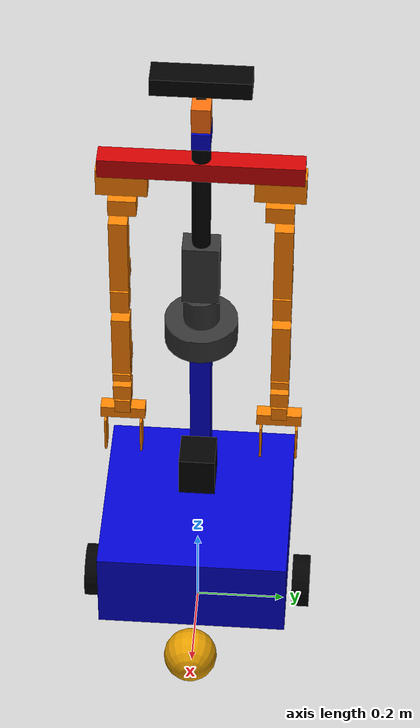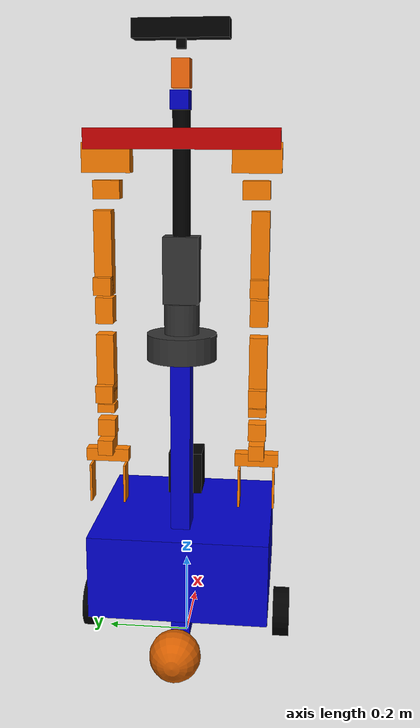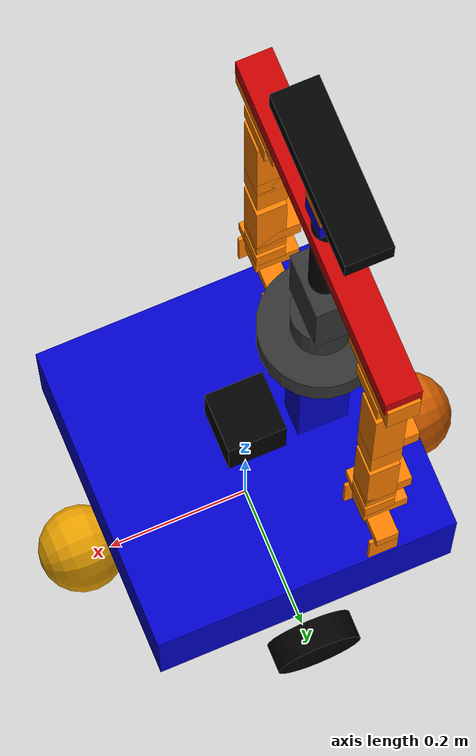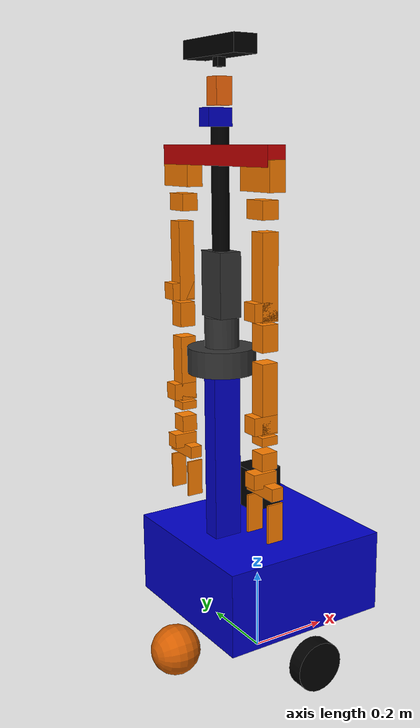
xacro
<?xml version="1.0"?>
<robot name="justina" xmlns:xacro="http://www.ros.org/wiki/xacro">
  <!-- INCLUDES -->
  <xacro:property name="base_width" value="0.42"/>
  <xacro:property name="base_depth" value="0.42"/>
  <xacro:property name="base_height" value="0.2"/>
  <xacro:property name="base_mass" value="30.0"/>
  <xacro:property name="wheel_radius" value="0.06"/>
  <xacro:property name="wheel_height" value="0.04"/>
  <xacro:property name="wheel_mass" value="30.0"/>
  <xacro:property name="torso_mass" value="0.6"/>
  <xacro:property name="spine_mass" value="0.001"/>
  <xacro:property name="neck_mass" value="0.001"/>
  <xacro:property name="MX_106_mass" value="0.05"/>
  <xacro:property name="MX_64_mass" value="0.05"/>
  <xacro:property name="kinect_mass" value="0.1"/>
  <xacro:property name="PI_2" value="1.570796327"/>
  <xacro:property name="PI" value="3.14159265359"/>

  <!-- BASE LINK -->
  <link name="base_link">
    <visual>
      <origin xyz="0 0 0.235" rpy="0 0 0"/>
      <geometry> <box size="0.42 0.42 0.2"/></geometry>
      <material name="blue"/>
    </visual>
    <collision>
      <origin xyz="0 0 0.235" rpy="0 0 0"/>
      <geometry> <box size="0.42 0.42 0.2"/></geometry>
    </collision>
    <inertial>
      <origin xyz="0 0 0.235" rpy="0 0 0"/>
      <mass value="50.00"/>
      <inertia ixx="0.3742" ixy="0.000434172172" ixz="0.03088" iyy="0.3436" iyz="0.01775" izz="0.1509"/>
    </inertial>
  </link>
  <joint name="wheel_left_connect" type="continuous">
    <origin xyz="0 0.24 0.065" rpy="-1.5708 0 0"/>
    <parent link="base_link"/>
    <child link="wheel_left"/>
    <axis xyz="0.0 0 1.0"/>
    <limit effort="11.067" velocity="20.8"/>
    <dynamics damping="1.0"/>
  </joint>

  <link name="wheel_left">
    <visual>
      <origin xyz="0 0 0" rpy="0 0 0"/>
      <geometry><cylinder length="${wheel_height}" radius="${wheel_radius}"/></geometry>
      <material name="gray"><color rgba="0 0 0 1" /></material>
    </visual>
    <collision>
      <origin xyz="0 0 0" rpy="0 0 0"/>
	<geometry><cylinder length="${wheel_height}" radius="${wheel_radius}"/></geometry>
    </collision>
    <inertial>
      <origin xyz="0 0 0"/>
      <mass value="0.2"/>
      <inertia ixx="0.015" ixy="0" ixz="0" iyy="0.015" iyz="0" izz="0.015"/>
    </inertial>
  </link>

  <joint name="wheel_right_connect" type="continuous">
    <origin xyz="0 -0.24 0.065" rpy="-1.5708 0 0"/>
    <parent link="base_link"/>
    <child link="wheel_right"/>
    <axis xyz="0.0 0 1.0"/>
    <limit effort="11.067" velocity="20.8"/>
    <dynamics damping="1.0"/>
  </joint>

  <link name="wheel_right">
    <visual>
      <origin xyz="0 0 0" rpy="0 0 0"/>
      <geometry><cylinder length="${wheel_height}" radius="${wheel_radius}"/></geometry>
      <material name="black"><color rgba="0 0 0 1" /></material>
    </visual>
    <collision>
      <origin xyz="0 0 0" rpy="0 0 0"/>
      <geometry><cylinder length="${wheel_height}" radius="${wheel_radius}"/></geometry>
    </collision>
    <inertial>
      <origin xyz="0 0 0" rpy="0 0 0"/>
      <mass value="0.2"/>
      <inertia ixx="0.015" ixy="0" ixz="0" iyy="0.015" iyz="0" izz="0.015"/>
    </inertial>
  </link>

  <joint name="wheel_back_connect_x" type="continuous">
    <origin xyz="-0.24 0 0.065" rpy="-1.5708 0 -1.5708"/>
    <parent link="base_link"/>
    <child link="wheel_back_x"/>
    <axis xyz="1 0 0"/>
    <limit effort="1.0" velocity="3.0"/>
    <dynamics damping="1.0"/>
  </joint>

  <link name="wheel_back_x">
    <inertial>
      <origin xyz="0 0 0" rpy="0 0 0"/>
      <mass value="0.2"/>
      <inertia ixx="0.015" ixy="0" ixz="0" iyy="0.015" iyz="0" izz="0.015"/>
    </inertial>
  </link>

  <joint name="wheel_back_connect_y" type="continuous">
    <axis xyz="0 1 0"/>
    <limit effort="8.85" velocity="10.0"/>
    <parent link="wheel_back_x"/>
    <child link="wheel_back_y"/>
  </joint>
  <link name="wheel_back_y">
    <inertial>
      <mass value="0.2"/>
      <origin xyz="0 0 0"/>
      <inertia ixx="0.015" ixy="0" ixz="0" iyy="0.015" iyz="0" izz="0.015"/>
    </inertial>
  </link>

  <joint name="wheel_back_connect_z" type="continuous">
      <axis xyz="0.0 0.0 1.0"/>
      <limit effort="8.85" velocity="10.0"/>
      <parent link="wheel_back_y"/>
      <child link="wheel_back_z"/>
  </joint>
  <link name="wheel_back_z">
    <visual>
      <geometry>
        <sphere radius="0.06"/>
      </geometry>
      <material name="wheel"/>
    </visual>
    <collision>
      <geometry>
        <sphere radius="0.06"/>
      </geometry>
    </collision>
    <inertial>
      <mass value="0.2"/>
      <origin xyz="0 0 0"/>
      <inertia ixx="0.015" ixy="0" ixz="0" iyy="0.015" iyz="0" izz="0.015"/>
    </inertial>
  </link>

	<joint name="wheel_front_connect_x" type="continuous">
		<origin xyz="0.24 0 0.065" rpy="-1.5708 0 -1.5708"/>
		<parent link="base_link"/>
		<child link="wheel_front_x"/>
		<axis xyz="1 0 0"/>
    		<limit effort="1.0" velocity="3.0"/>
    		<dynamics damping="1.0"/>
	</joint>

  <link name="wheel_front_x">
    <inertial>
      <mass value="0.2"/>
      <origin xyz="0 0 0"/>
      <inertia ixx="0.015" ixy="0" ixz="0" iyy="0.015" iyz="0" izz="0.015"/>
    </inertial>
  </link>
  <joint name="wheel_front_connect_y" type="continuous">
    <axis xyz="0.0 1.0 0.0"/>
    <limit effort="8.85" velocity="10.0"/>
    <parent link="wheel_front_x"/>
    <child link="wheel_front_y"/>
  </joint>
  <link name="wheel_front_y">
    <inertial>
      <mass value="0.2"/>
      <origin xyz="0 0 0"/>
      <inertia ixx="0.015" ixy="0" ixz="0" iyy="0.015" iyz="0" izz="0.015"/>
    </inertial>
  </link>
  <joint name="wheel_front_connect_z" type="continuous">
    <axis xyz="0.0 0.0 1.0"/>
    <limit effort="8.85" velocity="10.0"/>
    <parent link="wheel_front_y"/>
    <child link="wheel_front_z"/>
  </joint>
  <link name="wheel_front_z">
    <visual>
      <geometry>
        <sphere radius="0.06"/>
      </geometry>
      <material name="wheel"/>
    </visual>
    <collision>
      <geometry>
        <sphere radius="0.06"/>
      </geometry>
    </collision>
    <inertial>
      <mass value="0.2"/>
      <origin xyz="0 0 0"/>
      <inertia ixx="0.015" ixy="0" ixz="0" iyy="0.015" iyz="0" izz="0.015"/>
    </inertial>
  </link>

  	<gazebo reference="base_link">
		<material>Gazebo/blue</material>
    <selfCollide>false</selfCollide>
    <gravity>true</gravity>
    <mu1>0.9</mu1>
    <mu2>0.9</mu2>
	</gazebo>
	<gazebo reference="wheel_left">
		<material>Gazebo/Black</material>
		    <selfCollide>false</selfCollide>
		    <gravity>true</gravity>
		    <turnGravityOff>false</turnGravityOff>
		    <kp>1000000.0</kp>
		    <kd>10.0</kd>
		    <mu1>1.0</mu1>
		    <mu2>1.0</mu2>
		    <fdir1>1 0 0</fdir1>
		    <maxVel>1.0</maxVel>
		    <minDepth>0.00</minDepth>
	</gazebo>
	<gazebo reference="wheel_right">
		<material>Gazebo/Black</material>
    <selfCollide>false</selfCollide>
    <gravity>true</gravity>
    <turnGravityOff>false</turnGravityOff>
    <kp>1000000.0</kp>
    <kd>10.0</kd>
    <mu1>1.0</mu1>
    <mu2>1.0</mu2>
    <fdir1>1 0 0</fdir1>
    <maxVel>1.0</maxVel>
    <minDepth>0.00</minDepth>
	</gazebo>
  <gazebo reference="wheel_back_y">
    <selfCollide>false</selfCollide>
    <gravity>true</gravity>
    <mu1>0.1</mu1>
    <mu2>0.1</mu2>
    <maxVel>1.0</maxVel>
    <material value="Gazebo/FlatBlack"/>
  </gazebo>
  <gazebo reference="wheel_front_z">
    <selfCollide>false</selfCollide>
    <gravity>true</gravity>
    <mu1>0.1</mu1>
    <mu2>0.1</mu2>
    <maxVel>1.0</maxVel>
    <material value="Gazebo/FlatBlack"/>
  </gazebo>

  <transmission name="tran1">
	    <type>transmission_interface/SimpleTransmission</type>
	    <joint name="wheel_left_connect">
		    <hardwareInterface>hardware_interface/EffortJointInterface</hardwareInterface>
	    </joint>
	    <actuator name="motor1">
		    <mechanicalReduction>1</mechanicalReduction>
	    </actuator>
    </transmission>

    <transmission name="tran2">
	    <type>transmission_interface/SimpleTransmission</type>
	    <joint name="wheel_right_connect">
		    <hardwareInterface>hardware_interface/EffortJointInterface</hardwareInterface>
	    </joint>
	    <actuator name="motor2">
		    <mechanicalReduction>1</mechanicalReduction>
	    </actuator>
    </transmission>

    <!-- GAZEBO CONTROL -->
    <gazebo>
      <plugin name="differential_drive_controller" filename="libgazebo_ros_diff_drive.so">
	<leftJoint>wheel_left_connect</leftJoint>
	<rightJoint>wheel_right_connect</rightJoint>
	<wheelSeparation>0.42</wheelSeparation>
	<wheelDiameter>0.12</wheelDiameter>
	<torque>20</torque>
        <publishWheelTF>true</publishWheelTF>
        <robotNamespace>/</robotNamespace>
        <publishTf>1</publishTf>
        <publishWheelJointState>false</publishWheelJointState>
        <alwaysOn>true</alwaysOn>
        <updateRate>100.0</updateRate>
        <broadcastTF>1</broadcastTF>
        <wheelTorque>20.0</wheelTorque>
        <commandTopic>cmd_vel</commandTopic>
        <odometryFrame>odom</odometryFrame>
        <odometryTopic>odom</odometryTopic>
        <pose_covariance_diagonal>[1.0, 1.0, 0.0, 0.0, 0.0, 1.0]</pose_covariance_diagonal>
        <twist_covariance_diagonal>[0.01, 0.0, 0.0, 0.0, 0.0, 0.1]</twist_covariance_diagonal>
        <gaussianNoise>0.05</gaussianNoise>
        <robotBaseFrame>base_link</robotBaseFrame>
        <legacyMode>false</legacyMode>
        <publishOdomTF>true</publishOdomTF>
        <odometrySource>world</odometrySource>
      </plugin>
    </gazebo>

    <!-- LASER LINK AND PLUGINS -->
    <link name="laser_link">
      <visual>
        <origin xyz="0 0 0" rpy="0 0 0"/>
        <geometry> <box size="0.08 0.08 0.1"/></geometry>
        <material name="black"/>
      </visual>
      <collision>
        <origin xyz="0 0 0" rpy="0 0 0"/>
        <geometry> <box size="0.08 0.08 0.1"/></geometry>
      </collision>
      <inertial>
        <origin xyz="0 0 0" rpy="0 0 0"/>
        <mass value="0.1"/>
        <inertia
            ixx="0.000136667" ixy="0.0" ixz="0.0"
            iyy="0.000136667" iyz="0.0"
            izz="0.000106667"/>
      </inertial>
    </link>
    <joint name="laser_connect" type="fixed">
      <origin xyz="0 0 0.44" />
      <parent link="base_link"/>
      <child link="laser_link"/>
    </joint>
    <gazebo reference="laser_link">
    <sensor type="ray" name="hokuyo_sensor">
      <pose>0 0 0 0 0 0</pose>
      <visualize>true</visualize>
      <update_rate>10</update_rate>
      <ray>
        <scan>
          <horizontal>
            <samples>370</samples>
            <resolution>0.5</resolution>
            <min_angle>-1.570796</min_angle>
            <max_angle>1.570796</max_angle>
          </horizontal>
        </scan>
        <range>
          <min>0.10</min>
          <max>10.0</max>
          <resolution>0.01</resolution>
        </range>
        <noise>
          <type>gaussian</type>
          <mean>0.0</mean>
          <stddev>0.01</stddev>
        </noise>
      </ray>
      <plugin name="gazebo_ros_hokuyo_controller" filename="libgazebo_ros_laser.so">
        <topicName>/scan</topicName>
        <frameName>laser_link</frameName>
      </plugin>
    </sensor>
    </gazebo>

        <!--
      SPINE LINKS AND JOINTS
    -->
    <link name="spine_link">
      <visual>
        <origin xyz= "0 0 -0.3" rpy="0 0 0"/>
        <geometry><box size="0.07 0.045 0.7"/></geometry>
        <material name="blue"/>
      </visual>
      <collision>
        <origin xyz= "0 0 -0.3" rpy="0 0 0"/>
        <geometry><box size="0.07 0.045 0.7"/></geometry>
      </collision>
      <inertial>
        <origin xyz="0 0 0" rpy="0 0 0"/>
        <mass value="0.1"/>
        <inertia
            ixx="0.001031" ixy="0.0" ixz="0.0"
            iyy="0.001025" iyz="0.0"
            izz="0.00014"/>
      </inertial>
    </link>

    <joint name="spine_connect" type="fixed">
      <origin xyz= "-0.1 0 0.71" rpy="0 0 0"/>
      <parent link="base_link"/>
      <child link="spine_link"/>
    </joint>

    <!--
        WAIST LINKS AND JOINTS
    -->
    <link name="waist_link">
      <visual>
        <origin xyz= "0 0 -0.1" rpy="0 0 0"/>
        <geometry><cylinder length="0.06" radius="0.08"/></geometry>
        <material name="grey"/>
      </visual>
      <collision>
        <origin xyz= "0 0 -0.1" rpy="0 0 0"/>
        <geometry><cylinder length="0.06" radius="0.08"/></geometry>
      </collision>
      <visual>
        <origin xyz= "0 0 -0.04" rpy="0 0 0"/>
        <geometry><cylinder length="0.08" radius="0.04"/></geometry>
        <material name="grey"/>
      </visual>
      <collision>
        <origin xyz= "0 0 -0.04" rpy="0 0 0"/>
        <geometry><cylinder length="0.08" radius="0.04"/></geometry>
      </collision>
      <visual>
        <origin xyz= "0 0 0.075" rpy="0 0 0"/>
        <geometry><box size="0.055 0.08 0.15" /></geometry>
        <material name="grey"/>
      </visual>
      <collision>
        <origin xyz= "0 0 0.075" rpy="0 0 0"/>
        <geometry><box size="0.055 0.08 0.15" /></geometry>
      </collision>
      <visual>
        <origin xyz= "0 0 0.285" rpy="0 0 0"/>
        <geometry><cylinder length="0.27" radius="0.02"/></geometry>
        <material name="gray"/>
      </visual>
      <collision>
        <origin xyz= "0 0 0.285" rpy="0 0 0"/>
        <geometry><cylinder length="0.27" radius="0.02"/></geometry>
      </collision>
      <inertial>
        <origin xyz="0 0 0" rpy="0 0 0"/>
        <mass value="0.5"/>
        <inertia
            ixx="0.00258333" ixy="0.0" ixz="0.0"
            iyy="0.00258333" iyz="0.0"
            izz="0.0045"/>
      </inertial>
    </link>

    <joint name="waist_connect" type="fixed">
      <origin xyz= "0 0 0.16" rpy="0 0 0"/>
      <parent link="spine_link"/>
      <child link="waist_link"/>
    </joint>

    <link name="shoulders_link">
      <visual>
        <origin xyz= "0 0 0" rpy="0 0 0"/>
        <geometry><box size="0.045 0.43 0.045"/></geometry>
        <material name="red"/>
      </visual>
      <collision>
        <origin xyz= "0 0 0" rpy="0 0 0"/>
        <geometry><box size="0.045 0.43 0.045"/></geometry>
      </collision>
      <inertial>
        <origin xyz="0 0 0" rpy="0 0 0"/>
        <mass value="0.5"/>
        <inertia
            iyy="0.00075" ixy="0.0" ixz="0.0"
            ixx="0.003504" iyz="0.0"
            izz="0.003504"/>
      </inertial>
    </link>

    <joint name="shoulders_connect" type="fixed">
      <origin xyz="0 0 0.36" rpy="0 0 0"/>
      <parent link="waist_link"/>
      <child link="shoulders_link"/>
    </joint>

    <!--
      LEFT ARM LINKS AND JOINTS
  -->
  <link name="shoulders_left_link">
    <visual>
      <origin xyz="0 -0.01 0.02" rpy = "0 0 0"/>
      <geometry>
        <box size = "0.04025 0.108 0.065"/>
      </geometry>
      <material name = "la_material"><color rgba="1.0 0.5 0 1"/></material>
    </visual>
    <collision>
      <origin xyz="0 -0.01 0.02" rpy = "0 0 0"/>
      <geometry>
        <box size = "0.04025 0.108 0.065"/>
      </geometry>
    </collision>
    <inertial>
      <origin xyz="0 -0.01 0.02" rpy = "0 0 0"/>
      <mass value="0.125"/>
      <inertia
        ixx="0.0015" ixy="0.0" ixz="0.0"
        iyy="0.002175" iyz="0.0"
        izz="0.003075"/>
    </inertial>
  </link>
  <link name="left_arm_link1">
    <visual>
      <origin xyz="0 -0.01 -0.04881" rpy = "0 0 0"/>
      <geometry>
        <box size = "0.04025 0.06 0.04025"/>
      </geometry>
      <material name = "la_material"><color rgba="1.0 0.5 0 1"/></material>
    </visual>
    <collision>
      <origin xyz="0 -0.01 -0.04881" rpy = "0 0 0"/>
      <geometry>
        <box size = "0.04025 0.06 0.04025"/>
      </geometry>
    </collision>
    <inertial>
      <origin xyz="0 -0.01 -0.04881" rpy = "0 0 0"/>
      <mass value="0.125"/>
      <inertia
        ixx="0.0015" ixy="0.0" ixz="0.0"
        iyy="0.002175" iyz="0.0"
        izz="0.003075"/>
    </inertial>
  </link>
  <link name="left_arm_link2">
    <visual>
      <origin xyz="0 0 -0.125" rpy = "0 0 0"/>
      <geometry>
        <box size = "0.04025 0.04025 0.19"/>
      </geometry>
      <material name = "la_material"><color rgba="1.0 0.5 0 1"/></material>
    </visual>
    <visual>
      <origin xyz="-0.01 0 -0.197" rpy = "0 0 0"/>
      <geometry>
        <box size = "0.06 0.04025 0.04025"/>
      </geometry>
      <material name = "la_material"><color rgba="1.0 0.5 0 1"/></material>
    </visual>
    <collision>
      <origin xyz="0 0 -0.125" rpy = "0 0 0"/>
      <geometry>
        <box size = "0.04025 0.04025 0.19"/>
      </geometry>
    </collision>
    <collision>
      <origin xyz="-0.01 0 -0.197" rpy = "0 0 0"/>
      <geometry>
        <box size = "0.06 0.04025 0.04025"/>
      </geometry>
    </collision>
    <inertial>
      <origin xyz="0 0 -0.175" rpy = "0 0 0"/>
      <mass value="0.155"/>
      <inertia
        ixx="0.0015" ixy="0.0" ixz="0.0"
        iyy="0.002175" iyz="0.0"
        izz="0.003075"/>
    </inertial>
  </link>
  <link name="left_arm_link3">
    <visual>
      <origin xyz="0 0 -0.04" rpy = "0 0 0"/>
      <geometry>
        <box size = "0.04025 0.04025 0.06"/>
      </geometry>
      <material name = "la_material"><color rgba="1.0 0.5 0 1"/></material>
    </visual>
    <collision>
      <origin xyz="0 0 -0.04" rpy = "0 0 0"/>
      <geometry>
        <box size = "0.04025 0.04025 0.06"/>
      </geometry>
    </collision>
    <inertial>
      <origin xyz="0 0 -0.04" rpy = "0 0 0"/>
      <mass value="0.125"/>
      <inertia
        ixx="0.0015" ixy="0.0" ixz="0.0"
        iyy="0.002175" iyz="0.0"
        izz="0.003075"/>
    </inertial>
  </link>
  <link name="left_arm_link4">
    <visual>
      <origin xyz="0 0 -0.11" rpy = "0 0 0"/>
      <geometry>
        <box size = "0.04025 0.04025 0.16"/>
      </geometry>
      <material name = "la_material"><color rgba="1.0 0.5 0 1"/></material>
    </visual>
    <visual>
      <origin xyz="-0.01 0 -0.167" rpy = "0 0 0"/>
      <geometry>
        <box size = "0.06 0.04025 0.04025"/>
      </geometry>
      <material name = "la_material"><color rgba="1.0 0.5 0 1"/></material>
    </visual>
    <collision>
      <origin xyz="0 0 -0.11" rpy = "0 0 0"/>
      <geometry>
        <box size = "0.04025 0.04025 0.16"/>
      </geometry>
    </collision>
    <collision>
      <origin xyz="-0.01 0 -0.167" rpy = "0 0 0"/>
      <geometry>
        <box size = "0.06 0.04025 0.04025"/>
      </geometry>
    </collision>
    <inertial>
      <origin xyz="-0.01 0 -0.147" rpy = "0 0 0"/>
      <mass value="0.125"/>
      <inertia
        ixx="0.0015" ixy="0.0" ixz="0.0"
        iyy="0.002175" iyz="0.0"
        izz="0.003075"/>
    </inertial>
  </link>
  <link name="left_arm_link5">
    <visual>
      <origin xyz="0 0 -0.025" rpy = "0 0 0"/>
      <geometry>
        <box size = "0.04025 0.04025 0.02"/>
      </geometry>
      <material name = "la_material"><color rgba="1.0 0.5 0 1"/></material>
    </visual>
    <collision>
      <origin xyz="0 0 -0.025" rpy = "0 0 0"/>
      <geometry>
        <box size = "0.04025 0.04025 0.02"/>
      </geometry>
    </collision>
    <inertial>
      <origin xyz="0 0 -0.025" rpy = "0 0 0"/>
      <mass value="0.125"/>
      <inertia
        ixx="0.0015" ixy="0.0" ixz="0.0"
        iyy="0.002175" iyz="0.0"
        izz="0.003075"/>
    </inertial>
  </link>
  <link name="left_arm_link6">
    <visual>
      <origin xyz="0 0 -0.042" rpy = "0 0 0"/>
      <geometry>
        <box size = "0.04025 0.04025 0.04"/>
      </geometry>
      <material name = "la_material"><color rgba="1.0 0.5 0 1"/></material>
    </visual>
    <collision>
      <origin xyz="0 0 -0.042" rpy = "0 0 0"/>
      <geometry>
        <box size = "0.04025 0.04025 0.04"/>
      </geometry>
    </collision>
    <inertial>
      <origin xyz="0 0 -0.042" rpy = "0 0 0"/>
      <mass value="0.125"/>
      <inertia
        ixx="0.0015" ixy="0.0" ixz="0.0"
        iyy="0.002175" iyz="0.0"
        izz="0.003075"/>
    </inertial>
  </link>
  <link name="left_arm_link7">
    <visual>
      <origin xyz="-0.01 0 -0.03" rpy = "0 0 0"/>
      <geometry>
        <box size = "0.06 0.03525 0.03525"/>
      </geometry>
      <material name = "la_material"><color rgba="1.0 0.5 0 1"/></material>
    </visual>
    <visual>
      <origin xyz="0 0 -0.055" rpy = "0 0 0"/>
      <geometry>
        <box size = "0.03 0.1 0.03"/>
      </geometry>
      <material name = "la_material"><color rgba="1.0 0.5 0 1"/></material>
    </visual>
    <collision>
      <origin xyz="-0.01 0 -0.03" rpy = "0 0 0"/>
      <geometry>
        <box size = "0.06 0.03525 0.03525"/>
      </geometry>
    </collision>
    <collision>
      <origin xyz="0 0 -0.055" rpy = "0 0 0"/>
      <geometry>
        <box size = "0.03 0.1 0.03"/>
      </geometry>
    </collision>
    <inertial>
      <origin xyz="-0.01 0 -0.05" rpy = "0 0 0"/>
      <mass value="0.125"/>
      <inertia
        ixx="0.0015" ixy="0.0" ixz="0.0"
        iyy="0.002175" iyz="0.0"
        izz="0.003075"/>
    </inertial>
  </link>
  <link name="left_arm_grip_left">
    <visual>
      <origin xyz="0 0 -0.065" rpy = "0 0 0"/>
      <geometry>
        <box size = "0.04 0.005 0.09"/>
      </geometry>
      <material name = "la_material"><color rgba="1.0 0.5 0 1"/></material>
    </visual>
    <collision>
      <origin xyz="0 0 -0.065" rpy = "0 0 0"/>
      <geometry>
        <box size = "0.04 0.005 0.09"/>
      </geometry>
    </collision>
    <inertial>
      <origin xyz="0 0 -0.065" rpy = "0 0 0"/>
      <mass value="0.125"/>
      <inertia
        ixx="0.0015" ixy="0.0" ixz="0.0"
        iyy="0.002175" iyz="0.0"
        izz="0.003075"/>
    </inertial>
  </link>
  <link name="left_arm_grip_right">
    <visual>
      <origin xyz="0 0 -0.065" rpy = "0 0 0"/>
      <geometry>
        <box size = "0.04 0.005 0.09"/>
      </geometry>
      <material name = "la_material"><color rgba="1.0 0.5 0 1"/></material>
    </visual>
    <collision>
      <origin xyz="0 0 -0.065" rpy = "0 0 0"/>
      <geometry>
        <box size = "0.04 0.005 0.09"/>
      </geometry>
    </collision>
    <inertial>
      <origin xyz="0 0 -0.065" rpy = "0 0 0"/>
      <mass value="0.125"/>
      <inertia
        ixx="0.0015" ixy="0.0" ixz="0.0"
        iyy="0.002175" iyz="0.0"
        izz="0.003075"/>
    </inertial>
  </link>
  <link name="left_arm_grip_center"/>

  <joint name="shoulders_left_connect" type="fixed">
    <origin xyz="0 0.175 -0.06" rpy="0 0 0"/>
    <parent link="shoulders_link"/>
    <child link="shoulders_left_link"/>
  </joint>
  <joint name="la_1_joint" type="revolute">
    <origin xyz="0 0.0 0" rpy="0 0 0"/>
    <parent link="shoulders_left_link"/>
    <child link="left_arm_link1"/>
    <axis xyz="0 -1 0" />
    <dynamics damping ="0.1" />
    <limit effort="16.0" velocity="3.0" lower="-1.7" upper="1.7"/>
  </joint>
  <joint name="la_2_joint" type="revolute">
    <origin xyz="0 0.0 -0.06381" rpy="0 0 0"/>
    <parent link="left_arm_link1"/>
    <child link="left_arm_link2"/>
    <axis xyz="1 0 0" />
    <dynamics damping ="0.1" />
    <limit effort="8.0" velocity="3.0" lower="-0.75" upper="1.85"/>
  </joint>
  <joint name="la_3_joint" type="revolute">
    <origin xyz="0 0.0 -0.215" rpy="0 0 0"/>
    <parent link="left_arm_link2"/>
    <child link="left_arm_link3"/>
    <axis xyz="0 0 1" />
    <dynamics damping ="0.1" />
    <limit effort="6.0" velocity="3.0" lower="-2.5" upper="2.5"/>
  </joint>
  <joint name="la_4_joint" type="revolute">
    <origin xyz="0 0.0 -0.065" rpy="0 0 0"/>
    <parent link="left_arm_link3"/>
    <child link="left_arm_link4"/>
    <axis xyz="0 -1 0" />
    <dynamics damping ="0.1" />
    <limit effort="8.0" velocity="3.0" lower="-1.8" upper="1.8"/>
  </joint>
  <joint name="la_5_joint" type="revolute">
    <origin xyz="0 0.0 -0.18" rpy="0 0 0"/>
    <parent link="left_arm_link4"/>
    <child link="left_arm_link5"/>
    <axis xyz="0 0 1" />
    <dynamics damping ="0.1" />
    <limit effort="6.0" velocity="3.0" lower="-2.5" upper="2.5"/>
  </joint>
  <joint name="la_6_joint" type="revolute">
    <origin xyz="0 0.0 -0.03" rpy="0 0 0"/>
    <parent link="left_arm_link5"/>
    <child link="left_arm_link6"/>
    <axis xyz="0 -1 0" />
    <dynamics damping ="0.1" />
    <limit effort="6.0" velocity="3.0" lower="-1.4" upper="1.57"/>
  </joint>
  <joint name="la_7_joint" type="revolute">
    <origin xyz="0 0.0 -0.055" rpy="0 0 0"/>
    <parent link="left_arm_link6"/>
    <child link="left_arm_link7"/>
    <axis xyz="0 0 1" />
    <dynamics damping ="0.1" />
    <limit effort="3.0" velocity="3.0" lower="-2.5" upper="2.5"/>
  </joint>
  <joint name="la_grip_left" type="revolute">
    <origin xyz="0 0.04 -0.06" rpy="0 0 0"/>
    <parent link="left_arm_link7"/>
    <child link="left_arm_grip_left"/>
    <axis xyz="1 0 0" />
    <dynamics damping ="0.1" />
    <limit effort="3.0" velocity="3.0" lower="-0.3" upper="1.5"/>
  </joint>
  <joint name="la_grip_right" type="revolute">
    <origin xyz="0 -0.04 -0.06" rpy="0 0 0"/>
    <parent link="left_arm_link7"/>
    <child link="left_arm_grip_right"/>
    <axis xyz="-1 0 0" />
    <dynamics damping ="0.1" />
    <limit effort="3.0" velocity="3.0" lower="-0.3" upper="1.5"/>
  </joint>
  <joint name="la_grip_center_joint" type="fixed">
    <origin xyz="0 0 -0.13" rpy="0 0 0"/>
    <parent link="left_arm_link7"/>
    <child link="left_arm_grip_center"/>
  </joint>

  <!--
      RIGHT ARM LINKS AND JOINTS
  -->
  <link name="shoulders_right_link">
    <visual>
      <origin xyz="0 0.01 0.02" rpy = "0 0 0"/>
      <geometry>
        <box size = "0.04025 0.108 0.065"/>
      </geometry>
      <material name = "la_material"><color rgba="1.0 0.5 0 1"/></material>
    </visual>
    <collision>
      <origin xyz="0 0.01 0.02" rpy = "0 0 0"/>
      <geometry>
        <box size = "0.04025 0.108 0.065"/>
      </geometry>
    </collision>
    <inertial>
      <origin xyz="0 0.01 0.02" rpy = "0 0 0"/>
      <mass value="0.125"/>
      <inertia
        ixx="0.0015" ixy="0.0" ixz="0.0"
        iyy="0.002175" iyz="0.0"
        izz="0.003075"/>
    </inertial>
  </link>
  <link name="right_arm_link1">
    <visual>
      <origin xyz="0 0.01 -0.04881" rpy = "0 0 0"/>
      <geometry>
        <box size = "0.04025 0.06 0.04025"/>
      </geometry>
      <material name = "la_material"><color rgba="1.0 0.5 0 1"/></material>
    </visual>
    <collision>
      <origin xyz="0 0.01 -0.04881" rpy = "0 0 0"/>
      <geometry>
        <box size = "0.04025 0.06 0.04025"/>
      </geometry>
    </collision>
    <inertial>
      <origin xyz="0 0.01 -0.04881" rpy = "0 0 0"/>
      <mass value="0.125"/>
      <inertia
        ixx="0.0015" ixy="0.0" ixz="0.0"
        iyy="0.002175" iyz="0.0"
        izz="0.003075"/>
    </inertial>
  </link>
  <link name="right_arm_link2">
    <visual>
      <origin xyz="0 0 -0.125" rpy = "0 0 0"/>
      <geometry>
        <box size = "0.04025 0.04025 0.19"/>
      </geometry>
      <material name = "la_material"><color rgba="1.0 0.5 0 1"/></material>
    </visual>
    <visual>
      <origin xyz="-0.01 0 -0.197" rpy = "0 0 0"/>
      <geometry>
        <box size = "0.06 0.04025 0.04025"/>
      </geometry>
      <material name = "la_material"><color rgba="1.0 0.5 0 1"/></material>
    </visual>
    <collision>
      <origin xyz="0 0 -0.125" rpy = "0 0 0"/>
      <geometry>
        <box size = "0.04025 0.04025 0.19"/>
      </geometry>
    </collision>
    <collision>
      <origin xyz="-0.01 0 -0.197" rpy = "0 0 0"/>
      <geometry>
        <box size = "0.06 0.04025 0.04025"/>
      </geometry>
    </collision>
    <inertial>
      <origin xyz="0 0 -0.175" rpy = "0 0 0"/>
      <mass value="0.155"/>
      <inertia
        ixx="0.0015" ixy="0.0" ixz="0.0"
        iyy="0.002175" iyz="0.0"
        izz="0.003075"/>
    </inertial>
  </link>
  <link name="right_arm_link3">
    <visual>
      <origin xyz="0 0 -0.04" rpy = "0 0 0"/>
      <geometry>
        <box size = "0.04025 0.04025 0.06"/>
      </geometry>
      <material name = "la_material"><color rgba="1.0 0.5 0 1"/></material>
    </visual>
    <collision>
      <origin xyz="0 0 -0.04" rpy = "0 0 0"/>
      <geometry>
        <box size = "0.04025 0.04025 0.06"/>
      </geometry>
    </collision>
    <inertial>
      <origin xyz="0 0 -0.04" rpy = "0 0 0"/>
      <mass value="0.125"/>
      <inertia
        ixx="0.0015" ixy="0.0" ixz="0.0"
        iyy="0.002175" iyz="0.0"
        izz="0.003075"/>
    </inertial>
  </link>
  <link name="right_arm_link4">
    <visual>
      <origin xyz="0 0 -0.11" rpy = "0 0 0"/>
      <geometry>
        <box size = "0.04025 0.04025 0.16"/>
      </geometry>
      <material name = "la_material"><color rgba="1.0 0.5 0 1"/></material>
    </visual>
    <visual>
      <origin xyz="-0.01 0 -0.167" rpy = "0 0 0"/>
      <geometry>
        <box size = "0.06 0.04025 0.04025"/>
      </geometry>
      <material name = "la_material"><color rgba="1.0 0.5 0 1"/></material>
    </visual>
    <collision>
      <origin xyz="0 0 -0.11" rpy = "0 0 0"/>
      <geometry>
        <box size = "0.04025 0.04025 0.16"/>
      </geometry>
    </collision>
    <collision>
      <origin xyz="-0.01 0 -0.167" rpy = "0 0 0"/>
      <geometry>
        <box size = "0.06 0.04025 0.04025"/>
      </geometry>
    </collision>
    <inertial>
      <origin xyz="-0.01 0 -0.147" rpy = "0 0 0"/>
      <mass value="0.125"/>
      <inertia
        ixx="0.0015" ixy="0.0" ixz="0.0"
        iyy="0.002175" iyz="0.0"
        izz="0.003075"/>
    </inertial>
  </link>
  <link name="right_arm_link5">
    <visual>
      <origin xyz="0 0 -0.025" rpy = "0 0 0"/>
      <geometry>
        <box size = "0.04025 0.04025 0.02"/>
      </geometry>
      <material name = "la_material"><color rgba="1.0 0.5 0 1"/></material>
    </visual>
    <collision>
      <origin xyz="0 0 -0.025" rpy = "0 0 0"/>
      <geometry>
        <box size = "0.04025 0.04025 0.02"/>
      </geometry>
    </collision>
    <inertial>
      <origin xyz="0 0 -0.025" rpy = "0 0 0"/>
      <mass value="0.125"/>
      <inertia
        ixx="0.0015" ixy="0.0" ixz="0.0"
        iyy="0.002175" iyz="0.0"
        izz="0.003075"/>
    </inertial>
  </link>
  <link name="right_arm_link6">
    <visual>
      <origin xyz="0 0 -0.042" rpy = "0 0 0"/>
      <geometry>
        <box size = "0.04025 0.04025 0.04"/>
      </geometry>
      <material name = "la_material"><color rgba="1.0 0.5 0 1"/></material>
    </visual>
    <collision>
      <origin xyz="0 0 -0.042" rpy = "0 0 0"/>
      <geometry>
        <box size = "0.04025 0.04025 0.04"/>
      </geometry>
    </collision>
    <inertial>
      <origin xyz="0 0 -0.042" rpy = "0 0 0"/>
      <mass value="0.125"/>
      <inertia
        ixx="0.0015" ixy="0.0" ixz="0.0"
        iyy="0.002175" iyz="0.0"
        izz="0.003075"/>
    </inertial>
  </link>
  <link name="right_arm_link7">
    <visual>
      <origin xyz="-0.01 0 -0.03" rpy = "0 0 0"/>
      <geometry>
        <box size = "0.06 0.03525 0.03525"/>
      </geometry>
      <material name = "la_material"><color rgba="1.0 0.5 0 1"/></material>
    </visual>
    <visual>
      <origin xyz="0 0 -0.055" rpy = "0 0 0"/>
      <geometry>
        <box size = "0.03 0.1 0.03"/>
      </geometry>
      <material name = "la_material"><color rgba="1.0 0.5 0 1"/></material>
    </visual>
    <collision>
      <origin xyz="-0.01 0 -0.03" rpy = "0 0 0"/>
      <geometry>
        <box size = "0.06 0.03525 0.03525"/>
      </geometry>
    </collision>
    <collision>
      <origin xyz="0 0 -0.055" rpy = "0 0 0"/>
      <geometry>
        <box size = "0.03 0.1 0.03"/>
      </geometry>
    </collision>
    <inertial>
      <origin xyz="-0.01 0 -0.05" rpy = "0 0 0"/>
      <mass value="0.125"/>
      <inertia
        ixx="0.0015" ixy="0.0" ixz="0.0"
        iyy="0.002175" iyz="0.0"
        izz="0.003075"/>
    </inertial>
  </link>
  <link name="right_arm_grip_left">
    <visual>
      <origin xyz="0 0 -0.065" rpy = "0 0 0"/>
      <geometry>
        <box size = "0.04 0.005 0.09"/>
      </geometry>
      <material name = "la_material"><color rgba="1.0 0.5 0 1"/></material>
    </visual>
    <collision>
      <origin xyz="0 0 -0.065" rpy = "0 0 0"/>
      <geometry>
        <box size = "0.04 0.005 0.09"/>
      </geometry>
    </collision>
    <inertial>
      <origin xyz="0 0 -0.065" rpy = "0 0 0"/>
      <mass value="0.125"/>
      <inertia
        ixx="0.0015" ixy="0.0" ixz="0.0"
        iyy="0.002175" iyz="0.0"
        izz="0.003075"/>
    </inertial>
  </link>
  <link name="right_arm_grip_right">
    <visual>
      <origin xyz="0 0 -0.065" rpy = "0 0 0"/>
      <geometry>
        <box size = "0.04 0.005 0.09"/>
      </geometry>
      <material name = "la_material"><color rgba="1.0 0.5 0 1"/></material>
    </visual>
    <collision>
      <origin xyz="0 0 -0.065" rpy = "0 0 0"/>
      <geometry>
        <box size = "0.04 0.005 0.09"/>
      </geometry>
    </collision>
    <inertial>
      <origin xyz="0 0 -0.065" rpy = "0 0 0"/>
      <mass value="0.125"/>
      <inertia
        ixx="0.0015" ixy="0.0" ixz="0.0"
        iyy="0.002175" iyz="0.0"
        izz="0.003075"/>
    </inertial>
  </link>
  <link name="right_arm_grip_center"/>

  <joint name="shoulders_right_connect" type="fixed">
    <origin xyz="0 -0.175 -0.06" rpy="0 0 0"/>
    <parent link="shoulders_link"/>
    <child link="shoulders_right_link"/>
  </joint>
  <joint name="ra_1_joint" type="revolute">
    <origin xyz="0 0.0 0" rpy="0 0 0"/>
    <parent link="shoulders_right_link"/>
    <child link="right_arm_link1"/>
    <axis xyz="0 -1 0" />
    <dynamics damping ="0.1" />
    <limit effort="16.0" velocity="3.0" lower="-1.7" upper="1.7"/>
  </joint>
  <joint name="ra_2_joint" type="revolute">
    <origin xyz="0 0.0 -0.06381" rpy="0 0 0"/>
    <parent link="right_arm_link1"/>
    <child link="right_arm_link2"/>
    <axis xyz="1 0 0" />
    <dynamics damping ="0.1" />
    <limit effort="8.0" velocity="3.0" lower="-1.85" upper="0.75"/>
  </joint>
  <joint name="ra_3_joint" type="revolute">
    <origin xyz="0 0.0 -0.215" rpy="0 0 0"/>
    <parent link="right_arm_link2"/>
    <child link="right_arm_link3"/>
    <axis xyz="0 0 1" />
    <dynamics damping ="0.1" />
    <limit effort="6.0" velocity="3.0" lower="-2.5" upper="2.5"/>
  </joint>
  <joint name="ra_4_joint" type="revolute">
    <origin xyz="0 0.0 -0.065" rpy="0 0 0"/>
    <parent link="right_arm_link3"/>
    <child link="right_arm_link4"/>
    <axis xyz="0 -1 0" />
    <dynamics damping ="0.1" />
    <limit effort="8.0" velocity="3.0" lower="-1.8" upper="1.8"/>
  </joint>
  <joint name="ra_5_joint" type="revolute">
    <origin xyz="0 0.0 -0.18" rpy="0 0 0"/>
    <parent link="right_arm_link4"/>
    <child link="right_arm_link5"/>
    <axis xyz="0 0 1" />
    <dynamics damping ="0.1" />
    <limit effort="6.0" velocity="3.0" lower="-2.5" upper="2.5"/>
  </joint>
  <joint name="ra_6_joint" type="revolute">
    <origin xyz="0 0.0 -0.03" rpy="0 0 0"/>
    <parent link="right_arm_link5"/>
    <child link="right_arm_link6"/>
    <axis xyz="0 -1 0" />
    <dynamics damping ="0.1" />
    <limit effort="6.0" velocity="3.0" lower="-1.4" upper="1.57"/>
  </joint>
  <joint name="ra_7_joint" type="revolute">
    <origin xyz="0 0.0 -0.055" rpy="0 0 0"/>
    <parent link="right_arm_link6"/>
    <child link="right_arm_link7"/>
    <axis xyz="0 0 1" />
    <dynamics damping ="0.1" />
    <limit effort="3.0" velocity="3.0" lower="-2.5" upper="2.5"/>
  </joint>
  <joint name="ra_grip_left" type="revolute">
    <origin xyz="0 0.04 -0.06" rpy="0 0 0"/>
    <parent link="right_arm_link7"/>
    <child link="right_arm_grip_left"/>
    <axis xyz="1 0 0" />
    <dynamics damping ="0.1" />
    <limit effort="3.0" velocity="3.0" lower="-0.3" upper="1.5"/>
  </joint>
  <joint name="ra_grip_right" type="revolute">
    <origin xyz="0 -0.04 -0.06" rpy="0 0 0"/>
    <parent link="right_arm_link7"/>
    <child link="right_arm_grip_right"/>
    <axis xyz="-1 0 0" />
    <dynamics damping ="0.1" />
    <limit effort="3.0" velocity="3.0" lower="-0.3" upper="1.5"/>
  </joint>
  <joint name="ra_grip_center_joint" type="fixed">
    <origin xyz="0 0 -0.13" rpy="0 0 0"/>
    <parent link="right_arm_link7"/>
    <child link="right_arm_grip_center"/>
  </joint>
  <!--
      HEAD LINKS AND JOINTS
  -->
  <link name="head_link1">
    <visual>
      <origin xyz= "-0.01 0 0.03" rpy="0 0 0"/>
      <geometry><box size="0.06 0.04 0.04"/></geometry>
      <material name="blue"/>
    </visual>
    <collision>
      <origin xyz= "-0.01 0 0.03" rpy="0 0 0"/>
      <geometry><box size="0.06 0.04 0.04"/></geometry>
    </collision>
    <inertial>
      <origin xyz="0.0 0 0.0" rpy = "0 0 0"/>
      <mass value = "0.15" />
      <inertia ixx = "0.00052" iyy = "0.00052" izz = "0.00004" ixy = "0" ixz = "0" iyz = "0" />
    </inertial>
  </link>

  <joint name="shoulders_head_connect" type="fixed">
    <origin xyz="0 0 0.05" rpy="0 0 0"/>
    <parent link="shoulders_link"/>
    <child link="head_link1"/>
  </joint>

  <link name="head_link2">
    <visual>
      <origin xyz= "0.0 0 0.035" rpy="0 0 0"/>
      <geometry>
        <box size="0.04 0.04 0.06"/>
      </geometry>
      <material name="orange"/>
    </visual>
    <collision>
      <origin xyz= "0.0 0 0.035" rpy="0 0 0"/>
      <geometry>
        <box size = "0.04 0.04 0.06"/>
      </geometry>
    </collision>
    <inertial>
      <origin xyz="0.0 0 0.0" rpy = "0 0 0"/>
      <mass value = "0.15" />
      <inertia ixx = "0.00003125" iyy = "0.00003125" izz = "0.00003125" ixy = "0" ixz = "0" iyz = "0" />
    </inertial>
  </link>

  <joint name="head_pan" type="revolute">
    <origin xyz="0.0 0 0.05" rpy="0 0 0" />
    <parent link="head_link1"/>
    <child link="head_link2"/>
    <axis xyz="0 0 1" />
    <dynamics damping ="0.1" />
    <limit effort="6.0" velocity="3.0" lower="-3.14" upper="3.14"/>
  </joint>

  <link name="neck_link">
    <visual>
      <origin xyz="0 0 0.035" rpy="0 0 0"/>
      <geometry>
        <box size="0.02 0.02 0.02"/>
      </geometry>
      <material name="black"/>
    </visual>
    <collision>
      <origin xyz= "0 0 0.035" rpy="0 0 0"/>
      <geometry>
        <box size="0.02 0.02 0.02"/>
      </geometry>
    </collision>
    <inertial>
      <origin xyz="0.0 0 0.0" rpy = "0 0 0"/>
      <mass value = "0.15" />
      <inertia ixx = "0.00006205" iyy = "0.000555" izz = "0.0005776" ixy = "0" ixz = "0" iyz = "0" />
    </inertial>
  </link>

  <joint name="head_tilt" type="revolute">
    <origin xyz="0.0 0 0.06" rpy="0 0 0" />
    <parent link="head_link2"/>
    <child link="neck_link"/>
    <axis xyz="0 -1 0" />
    <dynamics damping ="0.1" />
    <limit effort="6.0" velocity="3.0" lower="-1.2" upper="1.0"/>
  </joint>

  <link name="kinect_base">
    <visual>
      <origin xyz="0 0 0" rpy="0 0 0"/>
      <geometry>
        <box size=" 0.058 0.207 0.04"/>
      </geometry>
      <material name="black"/>
    </visual>
    <collision>
      <origin xyz= "0 0 0" rpy="0 0 0"/>
      <geometry>
        <box size=" 0.058 0.207 0.04"/>
      </geometry>
    </collision>
    <inertial>
      <origin xyz="0.0 0 0.0" rpy = "0 0 0"/>
      <mass value = "0.15" />
      <inertia ixx = "0.00006205" iyy = "0.000555" izz = "0.0005776" ixy = "0" ixz = "0" iyz = "0" />
    </inertial>
  </link>

  <joint name="kinect_base_connect" type="fixed">
    <origin xyz="0 0 0.065" rpy="0 0 0"/>
    <parent link="neck_link"/>
    <child link="kinect_base"/>
  </joint>

  <link name="kinect_link"/>

  <joint name="kinect_connect" type="fixed">
    <origin xyz="0 0 0" rpy="-1.5708 0 -1.5708"/>
    <parent link="kinect_base"/>
    <child link="kinect_link"/>
  </joint>

  <!--
      GRIPPER FRICTIONS
  -->
  <gazebo reference="left_arm_grip_left">
    <mu1>100.0</mu1>
    <mu2>100.0</mu2>
    <minDepth>0.003</minDepth>
    <maxVel>0</maxVel>
  </gazebo>
  <gazebo reference="left_arm_grip_right">
    <mu1>100.0</mu1>
    <mu2>100.0</mu2>
    <minDepth>0.003</minDepth>
    <maxVel>0</maxVel>
  </gazebo>
  <gazebo reference="right_arm_grip_left">
    <mu1>100.0</mu1>
    <mu2>100.0</mu2>
    <minDepth>0.003</minDepth>
    <maxVel>0</maxVel>
  </gazebo>
  <gazebo reference="right_arm_grip_right">
    <mu1>100.0</mu1>
    <mu2>100.0</mu2>
    <minDepth>0.003</minDepth>
    <maxVel>0</maxVel>
  </gazebo>

    <!--
      HEAD TRANSMISSIONS
  -->
    <transmission name="head_pan_transmission">
      <type>transmission_interface/SimpleTransmission</type>
      <joint name="head_pan">
        <hardwareInterface>hardware_interface/EffortJointInterface</hardwareInterface>
      </joint>
      <actuator name="head_pan_motor">
        <hardwareInterface>hardware_interface/EffortJointInterface</hardwareInterface>
        <mechanicalReduction>1</mechanicalReduction>
      </actuator>
    </transmission>
    <transmission name="head_tilt_transmission">
      <type>transmission_interface/SimpleTransmission</type>
      <joint name="head_tilt">
        <hardwareInterface>hardware_interface/EffortJointInterface</hardwareInterface>
      </joint>
      <actuator name="head_tilt_motor">
        <hardwareInterface>hardware_interface/EffortJointInterface</hardwareInterface>
        <mechanicalReduction>1</mechanicalReduction>
      </actuator>
    </transmission>

    <!--
      LEFT ARM TRANSMISSIONS
  -->
    <transmission name="la_1_transmission">
      <type>transmission_interface/SimpleTransmission</type>
      <joint name="la_1_joint">
        <hardwareInterface>hardware_interface/EffortJointInterface</hardwareInterface>
      </joint>
      <actuator name="la_1_motor">
        <hardwareInterface>hardware_interface/EffortJointInterface</hardwareInterface>
        <mechanicalReduction>1</mechanicalReduction>
      </actuator>
    </transmission>
    <transmission name="la_2_transmission">
      <type>transmission_interface/SimpleTransmission</type>
      <joint name="la_2_joint">
        <hardwareInterface>hardware_interface/EffortJointInterface</hardwareInterface>
      </joint>
      <actuator name="la_2_motor">
        <hardwareInterface>hardware_interface/EffortJointInterface</hardwareInterface>
        <mechanicalReduction>1</mechanicalReduction>
      </actuator>
    </transmission>
    <transmission name="la_3_transmission">
      <type>transmission_interface/SimpleTransmission</type>
      <joint name="la_3_joint">
        <hardwareInterface>hardware_interface/EffortJointInterface</hardwareInterface>
      </joint>
      <actuator name="la_3_motor">
        <hardwareInterface>hardware_interface/EffortJointInterface</hardwareInterface>
        <mechanicalReduction>1</mechanicalReduction>
      </actuator>
    </transmission>
    <transmission name="la_4_transmission">
      <type>transmission_interface/SimpleTransmission</type>
      <joint name="la_4_joint">
        <hardwareInterface>hardware_interface/EffortJointInterface</hardwareInterface>
      </joint>
      <actuator name="la_4_motor">
        <hardwareInterface>hardware_interface/EffortJointInterface</hardwareInterface>
        <mechanicalReduction>1</mechanicalReduction>
      </actuator>
    </transmission>
    <transmission name="la_5_transmission">
      <type>transmission_interface/SimpleTransmission</type>
      <joint name="la_5_joint">
        <hardwareInterface>hardware_interface/EffortJointInterface</hardwareInterface>
      </joint>
      <actuator name="la_5_motor">
        <hardwareInterface>hardware_interface/EffortJointInterface</hardwareInterface>
        <mechanicalReduction>1</mechanicalReduction>
      </actuator>
    </transmission>
    <transmission name="la_6_transmission">
      <type>transmission_interface/SimpleTransmission</type>
      <joint name="la_6_joint">
        <hardwareInterface>hardware_interface/EffortJointInterface</hardwareInterface>
      </joint>
      <actuator name="la_6_motor">
        <hardwareInterface>hardware_interface/EffortJointInterface</hardwareInterface>
        <mechanicalReduction>1</mechanicalReduction>
      </actuator>
    </transmission>
    <transmission name="la_7_transmission">
      <type>transmission_interface/SimpleTransmission</type>
      <joint name="la_7_joint">
        <hardwareInterface>hardware_interface/EffortJointInterface</hardwareInterface>
      </joint>
      <actuator name="la_7_motor">
        <hardwareInterface>hardware_interface/EffortJointInterface</hardwareInterface>
        <mechanicalReduction>1</mechanicalReduction>
      </actuator>
    </transmission>
    <transmission name="la_grip_left_transmission">
      <type>transmission_interface/SimpleTransmission</type>
      <joint name="la_grip_left">
        <hardwareInterface>hardware_interface/EffortJointInterface</hardwareInterface>
      </joint>
      <actuator name="la_grip_left_motor">
        <hardwareInterface>hardware_interface/EffortJointInterface</hardwareInterface>
        <mechanicalReduction>1</mechanicalReduction>
      </actuator>
    </transmission>
    <transmission name="la_grip_right_transmission">
      <type>transmission_interface/SimpleTransmission</type>
      <joint name="la_grip_right">
        <hardwareInterface>hardware_interface/EffortJointInterface</hardwareInterface>
      </joint>
      <actuator name="la_grip_right_motor">
        <hardwareInterface>hardware_interface/EffortJointInterface</hardwareInterface>
        <mechanicalReduction>1</mechanicalReduction>
      </actuator>
    </transmission>

   <!--
      RIGHT ARM TRANSMISSIONS
  -->
    <transmission name="ra_1_transmission">
      <type>transmission_interface/SimpleTransmission</type>
      <joint name="ra_1_joint">
        <hardwareInterface>hardware_interface/EffortJointInterface</hardwareInterface>
      </joint>
      <actuator name="ra_1_motor">
        <hardwareInterface>hardware_interface/EffortJointInterface</hardwareInterface>
        <mechanicalReduction>1</mechanicalReduction>
      </actuator>
    </transmission>
    <transmission name="ra_2_transmission">
      <type>transmission_interface/SimpleTransmission</type>
      <joint name="ra_2_joint">
        <hardwareInterface>hardware_interface/EffortJointInterface</hardwareInterface>
      </joint>
      <actuator name="ra_2_motor">
        <hardwareInterface>hardware_interface/EffortJointInterface</hardwareInterface>
        <mechanicalReduction>1</mechanicalReduction>
      </actuator>
    </transmission>
    <transmission name="ra_3_transmission">
      <type>transmission_interface/SimpleTransmission</type>
      <joint name="ra_3_joint">
        <hardwareInterface>hardware_interface/EffortJointInterface</hardwareInterface>
      </joint>
      <actuator name="ra_3_motor">
        <hardwareInterface>hardware_interface/EffortJointInterface</hardwareInterface>
        <mechanicalReduction>1</mechanicalReduction>
      </actuator>
    </transmission>
    <transmission name="ra_4_transmission">
      <type>transmission_interface/SimpleTransmission</type>
      <joint name="ra_4_joint">
        <hardwareInterface>hardware_interface/EffortJointInterface</hardwareInterface>
      </joint>
      <actuator name="ra_4_motor">
        <hardwareInterface>hardware_interface/EffortJointInterface</hardwareInterface>
        <mechanicalReduction>1</mechanicalReduction>
      </actuator>
    </transmission>
    <transmission name="ra_5_transmission">
      <type>transmission_interface/SimpleTransmission</type>
      <joint name="ra_5_joint">
        <hardwareInterface>hardware_interface/EffortJointInterface</hardwareInterface>
      </joint>
      <actuator name="ra_5_motor">
        <hardwareInterface>hardware_interface/EffortJointInterface</hardwareInterface>
        <mechanicalReduction>1</mechanicalReduction>
      </actuator>
    </transmission>
    <transmission name="ra_6_transmission">
      <type>transmission_interface/SimpleTransmission</type>
      <joint name="ra_6_joint">
        <hardwareInterface>hardware_interface/EffortJointInterface</hardwareInterface>
      </joint>
      <actuator name="ra_6_motor">
        <hardwareInterface>hardware_interface/EffortJointInterface</hardwareInterface>
        <mechanicalReduction>1</mechanicalReduction>
      </actuator>
    </transmission>
    <transmission name="ra_7_transmission">
      <type>transmission_interface/SimpleTransmission</type>
      <joint name="ra_7_joint">
        <hardwareInterface>hardware_interface/EffortJointInterface</hardwareInterface>
      </joint>
      <actuator name="ra_7_motor">
        <hardwareInterface>hardware_interface/EffortJointInterface</hardwareInterface>
        <mechanicalReduction>1</mechanicalReduction>
      </actuator>
    </transmission>
    <transmission name="ra_grip_left_transmission">
      <type>transmission_interface/SimpleTransmission</type>
      <joint name="ra_grip_left">
        <hardwareInterface>hardware_interface/EffortJointInterface</hardwareInterface>
      </joint>
      <actuator name="ra_grip_left_motor">
        <hardwareInterface>hardware_interface/EffortJointInterface</hardwareInterface>
        <mechanicalReduction>1</mechanicalReduction>
      </actuator>
    </transmission>
    <transmission name="ra_grip_right_transmission">
      <type>transmission_interface/SimpleTransmission</type>
      <joint name="ra_grip_right">
        <hardwareInterface>hardware_interface/EffortJointInterface</hardwareInterface>
      </joint>
      <actuator name="ra_grip_right_motor">
        <hardwareInterface>hardware_interface/EffortJointInterface</hardwareInterface>
        <mechanicalReduction>1</mechanicalReduction>
      </actuator>
    </transmission>

    <gazebo reference="kinect_base">
    <sensor name="kinect_justina" type="depth">
      <update_rate>30</update_rate>
      <visualize>true</visualize>
      <always_on>1</always_on>
      <camera>
        <horizontal_fov>1.047198</horizontal_fov>
        <image>
          <width>640</width>
          <height>480</height>
          <format>B8G8R8</format>
        </image>
      </camera>
      <plugin name="kinect_controller" filename="libgazebo_ros_openni_kinect.so">
        <baseline>0.2</baseline>
        <alwaysOn>true</alwaysOn>
        <updateRate>0.0</updateRate>
        <cameraName>kinect</cameraName>
        <imageTopicName>rgb/image_raw</imageTopicName>
        <cameraInfoTopicName>rgb/camera_info</cameraInfoTopicName>
        <depthImageTopicName>depth/image_raw</depthImageTopicName>
        <depthImageCameraInfoTopicName>depth/camera_info</depthImageCameraInfoTopicName>
        <pointCloudTopicName>points</pointCloudTopicName>
        <frameName>kinect_link</frameName>
        <pointCloudCutoffMax>3.5</pointCloudCutoffMax>
        <pointCloudCutoff>0.5</pointCloudCutoff>
        <CxPrime>0</CxPrime>
        <Cx>0</Cx>
        <Cy>0</Cy>
        <focalLength>0</focalLength>
        <hackBaseline>0</hackBaseline>
      </plugin>
    </sensor>
  </gazebo>

    <gazebo reference="base_link">
      <material>Gazebo/Blue</material>
    </gazebo>
    <gazebo reference="left_wheel_link">
      <material>Gazebo/DarkGrey</material>
    </gazebo>
    <gazebo reference="right_wheel_link">
      <material>Gazebo/DarkGrey</material>
    </gazebo>
    <gazebo>
      <plugin filename="libgazebo_ros_control.so" name="ros_control">
        <robotNamespace>/</robotNamespace>
      </plugin>
    </gazebo>
    <gazebo reference="base_link">
      <material>Gazebo/Orange</material>
    </gazebo>
    <gazebo reference="laser_link">
      <material>Gazebo/Black</material>
    </gazebo>
    <gazebo reference="wheel_left">
      <material>Gazebo/Black</material>
    </gazebo>
    <gazebo reference="wheel_right">
      <material>Gazebo/Black</material>
    </gazebo>
    <gazebo reference="wheel_front">
      <material>Gazebo/Black</material>
    </gazebo>
    <gazebo reference="wheel_back">
      <material>Gazebo/Black</material>
    </gazebo>
    <gazebo reference="spine_link">
      <material>Gazebo/SkyBlue</material>
    </gazebo>
    <gazebo reference="waist_link">
      <material>Gazebo/Grey</material>
    </gazebo>
    <gazebo reference="shoulders_link">
      <material>Gazebo/Red</material>
    </gazebo>
    <gazebo reference="shoulders_left_link">
      <material>Gazebo/Orange</material>
    </gazebo>
    <gazebo reference="left_arm_link1">
      <material>Gazebo/Orange</material>
    </gazebo>
    <gazebo reference="left_arm_link2">
      <material>Gazebo/Orange</material>
    </gazebo>
    <gazebo reference="left_arm_link3">
      <material>Gazebo/Orange</material>
    </gazebo>
    <gazebo reference="left_arm_link4">
      <material>Gazebo/Orange</material>
    </gazebo>
    <gazebo reference="left_arm_link5">
      <material>Gazebo/Orange</material>
    </gazebo>
    <gazebo reference="left_arm_link6">
      <material>Gazebo/Orange</material>
    </gazebo>
    <gazebo reference="left_arm_link7">
      <material>Gazebo/Orange</material>
    </gazebo>
    <gazebo reference="left_arm_grip_left">
      <material>Gazebo/Orange</material>
    </gazebo>
    <gazebo reference="left_arm_grip_right">
      <material>Gazebo/Orange</material>
    </gazebo>
    <gazebo reference="shoulders_right_link">
      <material>Gazebo/Orange</material>
    </gazebo>
    <gazebo reference="right_arm_link1">
      <material>Gazebo/Orange</material>
    </gazebo>
    <gazebo reference="right_arm_link2">
      <material>Gazebo/Orange</material>
    </gazebo>
    <gazebo reference="right_arm_link3">
      <material>Gazebo/Orange</material>
    </gazebo>
    <gazebo reference="right_arm_link4">
      <material>Gazebo/Orange</material>
    </gazebo>
    <gazebo reference="right_arm_link5">
      <material>Gazebo/Orange</material>
    </gazebo>
    <gazebo reference="right_arm_link6">
      <material>Gazebo/Orange</material>
    </gazebo>
    <gazebo reference="right_arm_link7">
      <material>Gazebo/Orange</material>
    </gazebo>
    <gazebo reference="right_arm_grip_left">
      <material>Gazebo/Orange</material>
    </gazebo>
    <gazebo reference="right_arm_grip_right">
      <material>Gazebo/Orange</material>
    </gazebo>
    <gazebo reference="head_link1">
      <material>Gazebo/SkyBlue</material>
    </gazebo>
    <gazebo reference="head_link2">
      <material>Gazebo/SkyBlue</material>
    </gazebo>
    <gazebo reference="neck_link">
      <material>Gazebo/Black</material>
    </gazebo>
    <gazebo reference="kinect_base">
      <material>Gazebo/Black</material>
    </gazebo>
    <gazebo reference="kinect_link">
      <material>Gazebo/Black</material>
    </gazebo>

    <!-- Import Rviz colors -->
    <material name="black">
      <color rgba="0.0 0.0 0.0 1.0"/>
    </material>
    <material name="blue">
      <color rgba="0.0 0.0 0.8 1.0"/>
    </material>
    <material name="green">
      <color rgba="0.0 0.8 0.0 1.0"/>
    </material>
    <material name="grey">
      <color rgba="0.2 0.2 0.2 1.0"/>
    </material>
    <material name="gray">
      <color rgba="0.2 0.2 0.2 1.0"/>
    </material>
    <material name="orange">
      <color rgba="1.0 0.423529411765 0.0392156862745 1.0"/>
    </material>
    <material name="brown">
      <color rgba="0.870588235294 0.811764705882 0.764705882353 1.0"/>
    </material>
    <material name="red">
      <color rgba="0.8 0.0 0.0 1.0"/>
    </material>
    <material name="white">
      <color rgba="1.0 1.0 1.0 1.0"/>
    </material>
  </robot>
